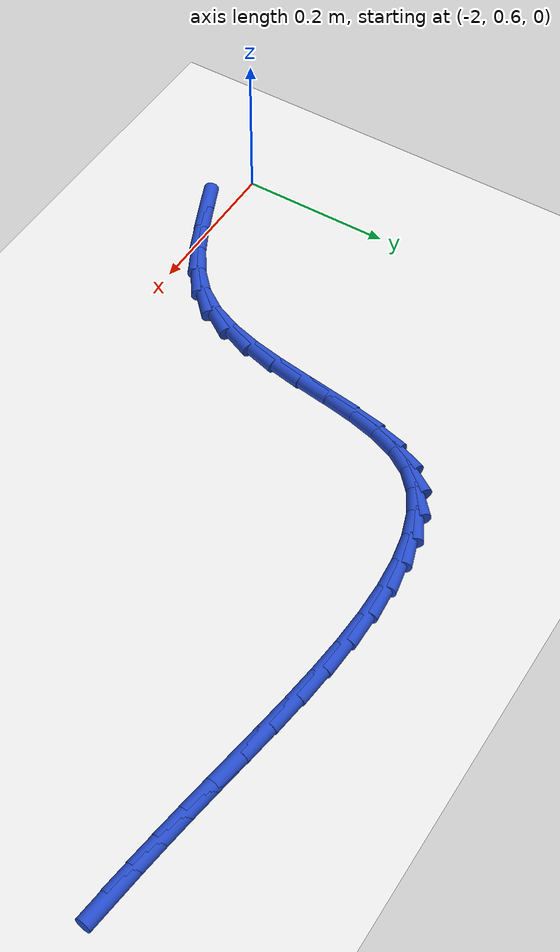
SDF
<sdf version="1.6">
 <world name="default">
  <model name="ground_plane">
   <static>1</static>
   <link name="link">
    <collision name="collision">
     <geometry><plane><normal>0 0 1</normal><size>100 100</size></plane></geometry>
     <surface><friction><ode><mu>100</mu><mu2>50</mu2></ode></friction></surface>
    </collision>
    <visual name="visual">
     <cast_shadows>0</cast_shadows>
     <geometry><plane><normal>0 0 1</normal><size>100 100</size></plane></geometry>
     <material>
      <script><uri>file://media/materials/scripts/gazebo.material</uri><name>Gazebo/WhiteGlow</name></script>
     </material>
    </visual>
   </link>
  </model>
  <model name="line">
   <link name="link_45">
    <pose>-1.068498215510047 1.0281338803084556 0.01 0 1.57 -0.11649737409116405</pose>
    <collision name="collision">
     <geometry><cylinder><radius>0.01</radius><length>0.08</length></cylinder></geometry>
    </collision>
    <visual name="visual">
     <material>
      <script><name>Gazebo/Blue</name><uri>file://media/materials/scripts/gazebo.material</uri></script>
     </material>
     <geometry><cylinder><radius>0.01</radius><length>0.08</length></cylinder></geometry>
    </visual>
   </link>
   <link name="link_46">
    <pose>-1.1049865324952386 1.032404008467679 0.01 0 1.57 -0.13096760363867704</pose>
    <collision name="collision">
     <geometry><cylinder><radius>0.01</radius><length>0.08</length></cylinder></geometry>
    </collision>
    <visual name="visual">
     <material>
      <script><name>Gazebo/Blue</name><uri>file://media/materials/scripts/gazebo.material</uri></script>
     </material>
     <geometry><cylinder><radius>0.01</radius><length>0.08</length></cylinder></geometry>
    </visual>
   </link>
   <link name="link_47">
    <pose>-1.142040541271253 1.0372848212335812 0.01 0 1.57 -0.1423580298324307</pose>
    <collision name="collision">
     <geometry><cylinder><radius>0.01</radius><length>0.08</length></cylinder></geometry>
    </collision>
    <visual name="visual">
     <material>
      <script><name>Gazebo/Blue</name><uri>file://media/materials/scripts/gazebo.material</uri></script>
     </material>
     <geometry><cylinder><radius>0.01</radius><length>0.08</length></cylinder></geometry>
    </visual>
   </link>
   <link name="link_48">
    <pose>-1.180028569999545 1.0427295525771423 0.01 0 1.57 -0.15059028054810106</pose>
    <collision name="collision">
     <geometry><cylinder><radius>0.01</radius><length>0.08</length></cylinder></geometry>
    </collision>
    <visual name="visual">
     <material>
      <script><name>Gazebo/Blue</name><uri>file://media/materials/scripts/gazebo.material</uri></script>
     </material>
     <geometry><cylinder><radius>0.01</radius><length>0.08</length></cylinder></geometry>
    </visual>
   </link>
   <link name="link_49">
    <pose>-1.2193189468415688 1.048691436469342 0.01 0 1.57 -0.1557584775787211</pose>
    <collision name="collision">
     <geometry><cylinder><radius>0.01</radius><length>0.08</length></cylinder></geometry>
    </collision>
    <visual name="visual">
     <material>
      <script><name>Gazebo/Blue</name><uri>file://media/materials/scripts/gazebo.material</uri></script>
     </material>
     <geometry><cylinder><radius>0.01</radius><length>0.08</length></cylinder></geometry>
    </visual>
   </link>
   <link name="link_50">
    <pose>-1.260279589269334 1.0551235035889648 0.01 0 1.57 -0.1561284405691426</pose>
    <collision name="collision">
     <geometry><cylinder><radius>0.01</radius><length>0.08</length></cylinder></geometry>
    </collision>
    <visual name="visual">
     <material>
      <script><name>Gazebo/Blue</name><uri>file://media/materials/scripts/gazebo.material</uri></script>
     </material>
     <geometry><cylinder><radius>0.01</radius><length>0.08</length></cylinder></geometry>
    </visual>
   </link>
   <link name="link_51">
    <pose>-1.303021134423855 1.0618514302744986 0.01 0 1.57 -0.14697952493277214</pose>
    <collision name="collision">
     <geometry><cylinder><radius>0.01</radius><length>0.08</length></cylinder></geometry>
    </collision>
    <visual name="visual">
     <material>
      <script><name>Gazebo/Blue</name><uri>file://media/materials/scripts/gazebo.material</uri></script>
     </material>
     <geometry><cylinder><radius>0.01</radius><length>0.08</length></cylinder></geometry>
    </visual>
   </link>
   <link name="link_52">
    <pose>-1.3469576983085867 1.0683561133407367 0.01 0 1.57 -0.12769859646323264</pose>
    <collision name="collision">
     <geometry><cylinder><radius>0.01</radius><length>0.08</length></cylinder></geometry>
    </collision>
    <visual name="visual">
     <material>
      <script><name>Gazebo/Blue</name><uri>file://media/materials/scripts/gazebo.material</uri></script>
     </material>
     <geometry><cylinder><radius>0.01</radius><length>0.08</length></cylinder></geometry>
    </visual>
   </link>
   <link name="link_53">
    <pose>-1.3913866778266022 1.0740606733862677 0.01 0 1.57 -0.09755626341747135</pose>
    <collision name="collision">
     <geometry><cylinder><radius>0.01</radius><length>0.08</length></cylinder></geometry>
    </collision>
    <visual name="visual">
     <material>
      <script><name>Gazebo/Blue</name><uri>file://media/materials/scripts/gazebo.material</uri></script>
     </material>
     <geometry><cylinder><radius>0.01</radius><length>0.08</length></cylinder></geometry>
    </visual>
   </link>
   <link name="link_54">
    <pose>-1.4356054698809773 1.0783882310096802 0.01 0 1.57 -0.05475691353478836</pose>
    <collision name="collision">
     <geometry><cylinder><radius>0.01</radius><length>0.08</length></cylinder></geometry>
    </collision>
    <visual name="visual">
     <material>
      <script><name>Gazebo/Blue</name><uri>file://media/materials/scripts/gazebo.material</uri></script>
     </material>
     <geometry><cylinder><radius>0.01</radius><length>0.08</length></cylinder></geometry>
    </visual>
   </link>
   <link name="link_55">
    <pose>-1.4789114713747853 1.080761906809562 0.01 0 1.57 0.0037678673888654627</pose>
    <collision name="collision">
     <geometry><cylinder><radius>0.01</radius><length>0.08</length></cylinder></geometry>
    </collision>
    <visual name="visual">
     <material>
      <script><name>Gazebo/Blue</name><uri>file://media/materials/scripts/gazebo.material</uri></script>
     </material>
     <geometry><cylinder><radius>0.01</radius><length>0.08</length></cylinder></geometry>
    </visual>
   </link>
   <link name="link_56">
    <pose>-1.5206020792110997 1.0806048213845014 0.01 0 1.57 0.08272945218387376</pose>
    <collision name="collision">
     <geometry><cylinder><radius>0.01</radius><length>0.08</length></cylinder></geometry>
    </collision>
    <visual name="visual">
     <material>
      <script><name>Gazebo/Blue</name><uri>file://media/materials/scripts/gazebo.material</uri></script>
     </material>
     <geometry><cylinder><radius>0.01</radius><length>0.08</length></cylinder></geometry>
    </visual>
   </link>
   <link name="link_57">
    <pose>-1.559974690292995 1.0773400953330863 0.01 0 1.57 0.18888648234141306</pose>
    <collision name="collision">
     <geometry><cylinder><radius>0.01</radius><length>0.08</length></cylinder></geometry>
    </collision>
    <visual name="visual">
     <material>
      <script><name>Gazebo/Blue</name><uri>file://media/materials/scripts/gazebo.material</uri></script>
     </material>
     <geometry><cylinder><radius>0.01</radius><length>0.08</length></cylinder></geometry>
    </visual>
   </link>
   <link name="link_58">
    <pose>-1.5963267015235463 1.0703908492539054 0.01 0 1.57 0.3309451182031308</pose>
    <collision name="collision">
     <geometry><cylinder><radius>0.01</radius><length>0.08</length></cylinder></geometry>
    </collision>
    <visual name="visual">
     <material>
      <script><name>Gazebo/Blue</name><uri>file://media/materials/scripts/gazebo.material</uri></script>
     </material>
     <geometry><cylinder><radius>0.01</radius><length>0.08</length></cylinder></geometry>
    </visual>
   </link>
   <link name="link_59">
    <pose>-1.6289555098058262 1.0591802037455467 0.01 0 1.57 0.5173513586052119</pose>
    <collision name="collision">
     <geometry><cylinder><radius>0.01</radius><length>0.08</length></cylinder></geometry>
    </collision>
    <visual name="visual">
     <material>
      <script><name>Gazebo/Blue</name><uri>file://media/materials/scripts/gazebo.material</uri></script>
     </material>
     <geometry><cylinder><radius>0.01</radius><length>0.08</length></cylinder></geometry>
    </visual>
   </link>
   <link name="link_60">
    <pose>-1.6571585120429095 1.0431312794065986 0.01 0 1.57 0.7492540904446358</pose>
    <collision name="collision">
     <geometry><cylinder><radius>0.01</radius><length>0.08</length></cylinder></geometry>
    </collision>
    <visual name="visual">
     <material>
      <script><name>Gazebo/Blue</name><uri>file://media/materials/scripts/gazebo.material</uri></script>
     </material>
     <geometry><cylinder><radius>0.01</radius><length>0.08</length></cylinder></geometry>
    </visual>
   </link>
   <link name="link_61">
    <pose>-1.6802331051378703 1.0216671968356494 0.01 0 1.57 1.0038397482812604</pose>
    <collision name="collision">
     <geometry><cylinder><radius>0.01</radius><length>0.08</length></cylinder></geometry>
    </collision>
    <visual name="visual">
     <material>
      <script><name>Gazebo/Blue</name><uri>file://media/materials/scripts/gazebo.material</uri></script>
     </material>
     <geometry><cylinder><radius>0.01</radius><length>0.08</length></cylinder></geometry>
    </visual>
   </link>
   <link name="link_62">
    <pose>-1.697628446783464 0.9943453765687943 0.01 0 1.57 1.2059693717743176</pose>
    <collision name="collision">
     <geometry><cylinder><radius>0.01</radius><length>0.08</length></cylinder></geometry>
    </collision>
    <visual name="visual">
     <material>
      <script><name>Gazebo/Blue</name><uri>file://media/materials/scripts/gazebo.material</uri></script>
     </material>
     <geometry><cylinder><radius>0.01</radius><length>0.08</length></cylinder></geometry>
    </visual>
   </link>
   <link name="link_63">
    <pose>-1.7100462121725133 0.9618316481214056 0.01 0 1.57 1.3352409389192696</pose>
    <collision name="collision">
     <geometry><cylinder><radius>0.01</radius><length>0.08</length></cylinder></geometry>
    </collision>
    <visual name="visual">
     <material>
      <script><name>Gazebo/Blue</name><uri>file://media/materials/scripts/gazebo.material</uri></script>
     </material>
     <geometry><cylinder><radius>0.01</radius><length>0.08</length></cylinder></geometry>
    </visual>
   </link>
   <link name="link_64">
    <pose>-1.71880511643042 0.9253378873529671 0.01 0 1.57 1.4086215397395698</pose>
    <collision name="collision">
     <geometry><cylinder><radius>0.01</radius><length>0.08</length></cylinder></geometry>
    </collision>
    <visual name="visual">
     <material>
      <script><name>Gazebo/Blue</name><uri>file://media/materials/scripts/gazebo.material</uri></script>
     </material>
     <geometry><cylinder><radius>0.01</radius><length>0.08</length></cylinder></geometry>
    </visual>
   </link>
   <link name="link_65">
    <pose>-1.7252281983924613 0.8860797963679817 0.01 0 1.57 1.4389815818383545</pose>
    <collision name="collision">
     <geometry><cylinder><radius>0.01</radius><length>0.08</length></cylinder></geometry>
    </collision>
    <visual name="visual">
     <material>
      <script><name>Gazebo/Blue</name><uri>file://media/materials/scripts/gazebo.material</uri></script>
     </material>
     <geometry><cylinder><radius>0.01</radius><length>0.08</length></cylinder></geometry>
    </visual>
   </link>
   <link name="link_66">
    <pose>-1.7306384968939132 0.8452730772709527 0.01 0 1.57 1.4326301883958852</pose>
    <collision name="collision">
     <geometry><cylinder><radius>0.01</radius><length>0.08</length></cylinder></geometry>
    </collision>
    <visual name="visual">
     <material>
      <script><name>Gazebo/Blue</name><uri>file://media/materials/scripts/gazebo.material</uri></script>
     </material>
     <geometry><cylinder><radius>0.01</radius><length>0.08</length></cylinder></geometry>
    </visual>
   </link>
   <link name="link_67">
    <pose>-1.7363590507700524 0.8041334321663843 0.01 0 1.57 1.3901153661759593</pose>
    <collision name="collision">
     <geometry><cylinder><radius>0.01</radius><length>0.08</length></cylinder></geometry>
    </collision>
    <visual name="visual">
     <material>
      <script><name>Gazebo/Blue</name><uri>file://media/materials/scripts/gazebo.material</uri></script>
     </material>
     <geometry><cylinder><radius>0.01</radius><length>0.08</length></cylinder></geometry>
    </visual>
   </link>
   <link name="link_68">
    <pose>-1.743712898856156 0.76387656315878 0.01 0 1.57 1.3069033681007913</pose>
    <collision name="collision">
     <geometry><cylinder><radius>0.01</radius><length>0.08</length></cylinder></geometry>
    </collision>
    <visual name="visual">
     <material>
      <script><name>Gazebo/Blue</name><uri>file://media/materials/scripts/gazebo.material</uri></script>
     </material>
     <geometry><cylinder><radius>0.01</radius><length>0.08</length></cylinder></geometry>
    </visual>
   </link>
   <link name="link_69">
    <pose>-1.7540230799874994 0.7257181723526427 0.01 0 1.57 1.1742670264477717</pose>
    <collision name="collision">
     <geometry><cylinder><radius>0.01</radius><length>0.08</length></cylinder></geometry>
    </collision>
    <visual name="visual">
     <material>
      <script><name>Gazebo/Blue</name><uri>file://media/materials/scripts/gazebo.material</uri></script>
     </material>
     <geometry><cylinder><radius>0.01</radius><length>0.08</length></cylinder></geometry>
    </visual>
   </link>
   <link name="link_70">
    <pose>-1.7686126329993601 0.6908739618524768 0.01 0 1.57 0.9832983461604564</pose>
    <collision name="collision">
     <geometry><cylinder><radius>0.01</radius><length>0.08</length></cylinder></geometry>
    </collision>
    <visual name="visual">
     <material>
      <script><name>Gazebo/Blue</name><uri>file://media/materials/scripts/gazebo.material</uri></script>
     </material>
     <geometry><cylinder><radius>0.01</radius><length>0.08</length></cylinder></geometry>
    </visual>
   </link>
   <link name="link_71">
    <pose>-1.7888017288078237 0.6605571824443162 0.01 0 1.57 0.7639145190522943</pose>
    <collision name="collision">
     <geometry><cylinder><radius>0.01</radius><length>0.08</length></cylinder></geometry>
    </collision>
    <visual name="visual">
     <material>
      <script><name>Gazebo/Blue</name><uri>file://media/materials/scripts/gazebo.material</uri></script>
     </material>
     <geometry><cylinder><radius>0.01</radius><length>0.08</length></cylinder></geometry>
    </visual>
   </link>
   <link name="link_72">
    <pose>-1.8151424737478572 0.6353245912099232 0.01 0 1.57 0.5946269177443292</pose>
    <collision name="collision">
     <geometry><cylinder><radius>0.01</radius><length>0.08</length></cylinder></geometry>
    </collision>
    <visual name="visual">
     <material>
      <script><name>Gazebo/Blue</name><uri>file://media/materials/scripts/gazebo.material</uri></script>
     </material>
     <geometry><cylinder><radius>0.01</radius><length>0.08</length></cylinder></geometry>
    </visual>
   </link>
   <link name="link_73">
    <pose>-1.8463871143754813 0.614194537338674 0.01 0 1.57 0.4843858479858581</pose>
    <collision name="collision">
     <geometry><cylinder><radius>0.01</radius><length>0.08</length></cylinder></geometry>
    </collision>
    <visual name="visual">
     <material>
      <script><name>Gazebo/Blue</name><uri>file://media/materials/scripts/gazebo.material</uri></script>
     </material>
     <geometry><cylinder><radius>0.01</radius><length>0.08</length></cylinder></geometry>
    </visual>
   </link>
   <link name="link_74">
    <pose>-1.8810304181976152 0.5959652929862268 0.01 0 1.57 0.42486942134939903</pose>
    <collision name="collision">
     <geometry><cylinder><radius>0.01</radius><length>0.08</length></cylinder></geometry>
    </collision>
    <visual name="visual">
     <material>
      <script><name>Gazebo/Blue</name><uri>file://media/materials/scripts/gazebo.material</uri></script>
     </material>
     <geometry><cylinder><radius>0.01</radius><length>0.08</length></cylinder></geometry>
    </visual>
   </link>
   <link name="link_75">
    <pose>-1.9175671527211777 0.5794351303082398 0.01 0 1.57 0.4096373216991103</pose>
    <collision name="collision">
     <geometry><cylinder><radius>0.01</radius><length>0.08</length></cylinder></geometry>
    </collision>
    <visual name="visual">
     <material>
      <script><name>Gazebo/Blue</name><uri>file://media/materials/scripts/gazebo.material</uri></script>
     </material>
     <geometry><cylinder><radius>0.01</radius><length>0.08</length></cylinder></geometry>
    </visual>
   </link>
  </model>
 </world>
</sdf>
